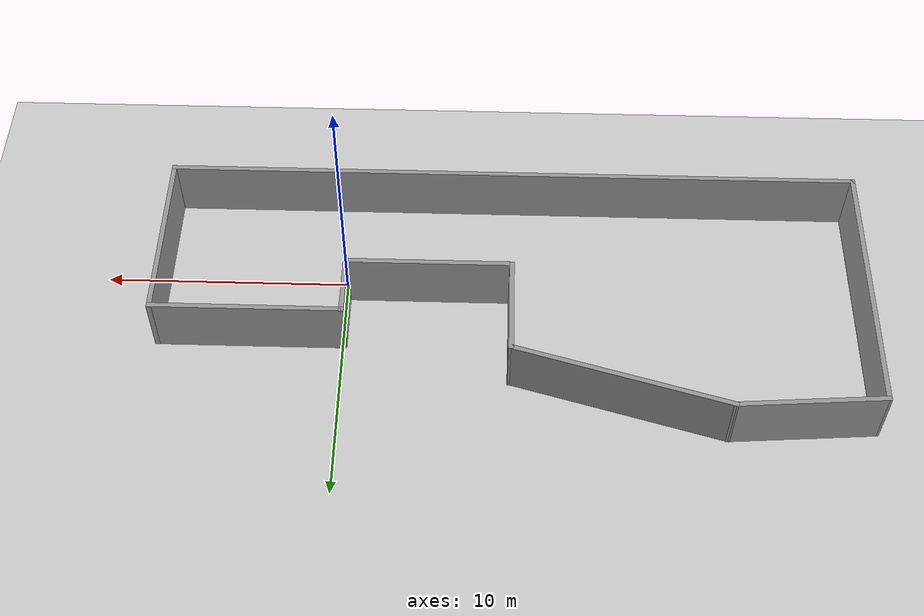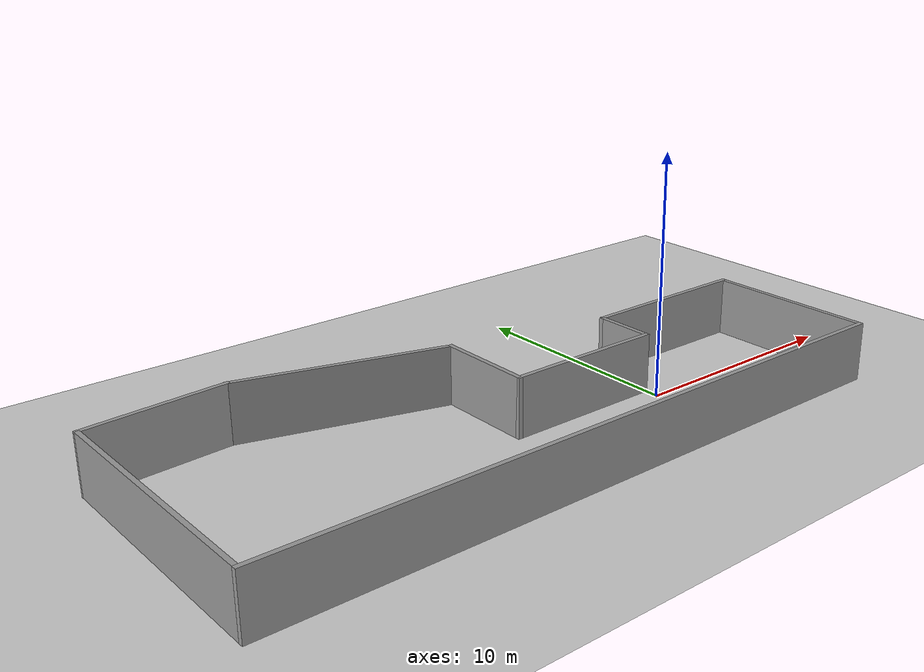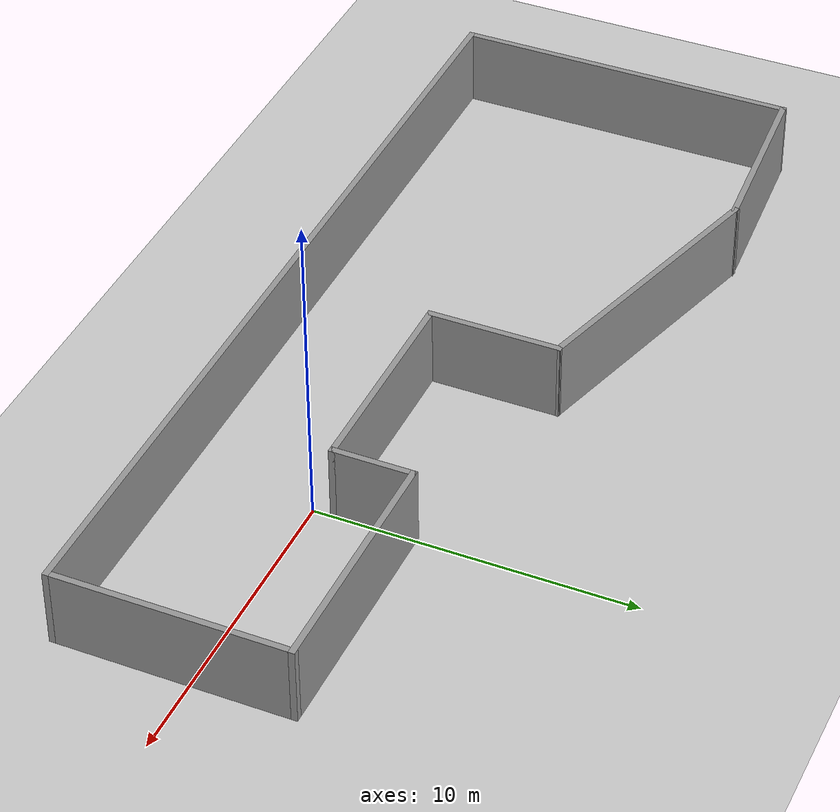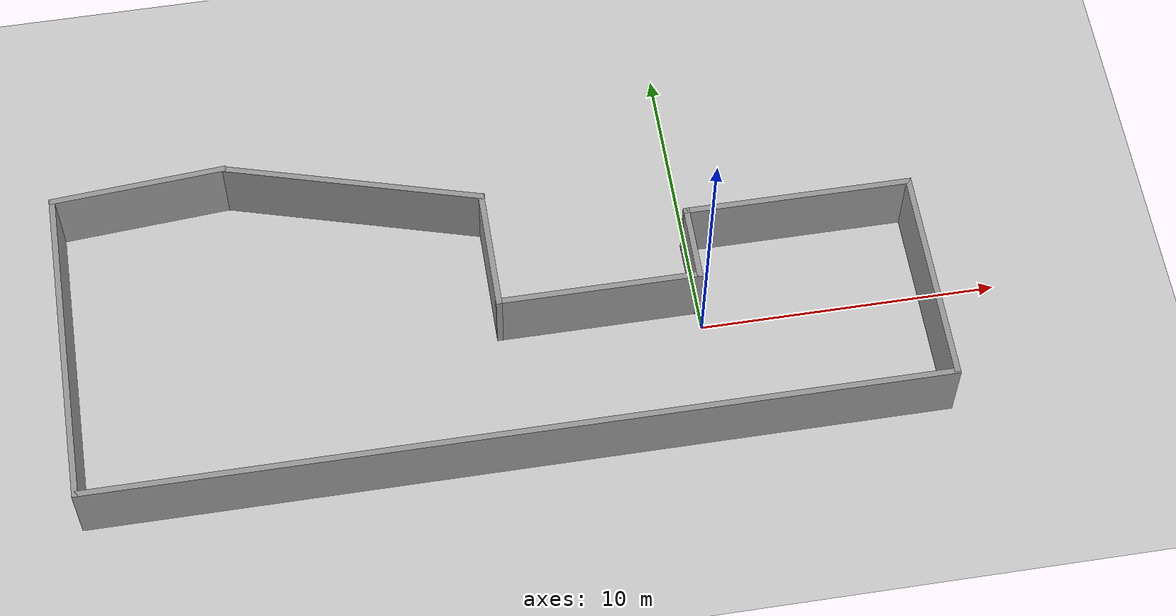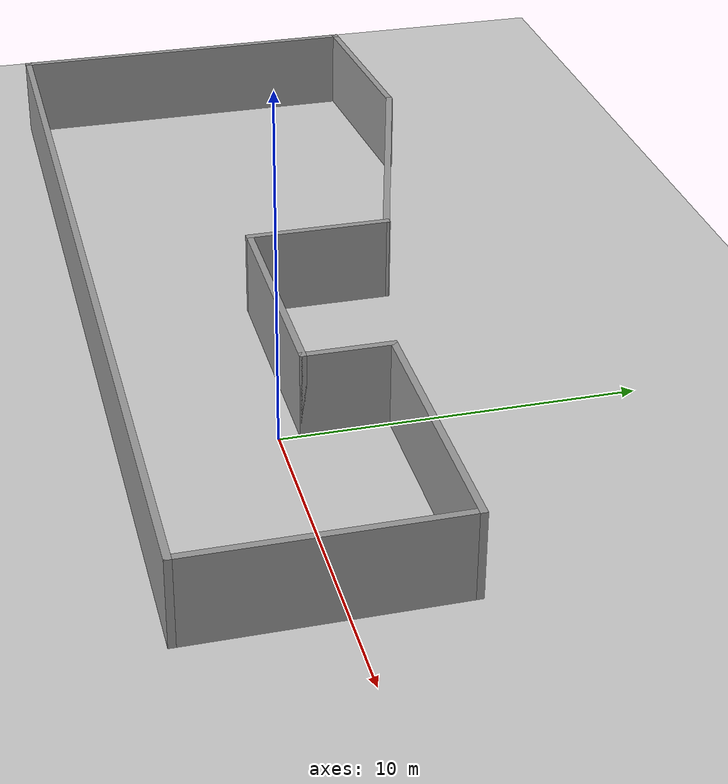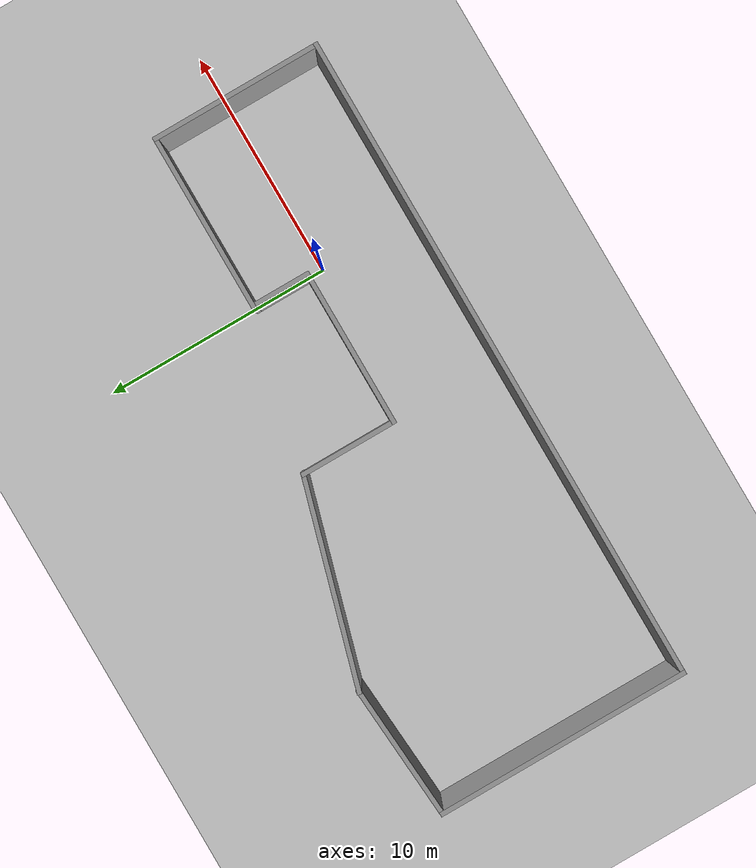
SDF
<sdf version="1.4">
 <world name="default">
  <light name="sun" type="directional">
   <pose>0 0 10 0 -0 0</pose>
   <diffuse>0.8 0.8 0.8 1</diffuse>
   <specular>0.2 0.2 0.2 1</specular>
   <attenuation>
    <range>1000</range>
    <constant>0.9</constant>
    <linear>0.01</linear>
    <quadratic>0.001</quadratic>
   </attenuation>
   <direction>-0.5 0.1 -0.9</direction>
  </light>
  <model name="ground_plane">
   <static>1</static>
   <link name="link">
    <collision name="collision">
     <geometry><plane><normal>0 0 1</normal><size>100 100</size></plane></geometry>
     <surface><friction><ode><mu>100</mu><mu2>50</mu2></ode></friction></surface>
    </collision>
    <visual name="visual">
     <cast_shadows>0</cast_shadows>
     <geometry><plane><normal>0 0 1</normal><size>100 100</size></plane></geometry>
     <material>
      <script><uri>file://media/materials/scripts/gazebo.material</uri><name>Gazebo/Grey</name></script>
     </material>
    </visual>
    <velocity_decay><linear>0</linear><angular>0</angular></velocity_decay>
   </link>
  </model>
  <physics type="ode">
   <max_step_size>0.001</max_step_size>
   <real_time_factor>1</real_time_factor>
   <real_time_update_rate>1000</real_time_update_rate>
   <gravity>0 0 -9.8</gravity>
  </physics>
  <scene><ambient>0.4 0.4 0.4 1</ambient><background>0.7 0.7 0.7 1</background><shadows>1</shadows></scene>
  <spherical_coordinates>
   <surface_model>EARTH_WGS84</surface_model>
   <latitude_deg>0</latitude_deg>
   <longitude_deg>0</longitude_deg>
   <elevation>0</elevation>
   <heading_deg>0</heading_deg>
  </spherical_coordinates>
  <model name="bigplace">
   <link name="Wall_1">
    <collision name="Wall_1_Collision">
     <geometry><box><size>11.1331 0.2 2.5</size></box></geometry>
     <pose>0 0 1.25 0 -0 0</pose>
    </collision>
    <visual name="Wall_1_Visual">
     <pose>0 0 1.25 0 -0 0</pose>
     <geometry><box><size>11.1331 0.2 2.5</size></box></geometry>
     <material>
      <script><uri>file://media/materials/scripts/gazebo.material</uri><name>Gazebo/Grey</name></script>
     </material>
    </visual>
    <velocity_decay><linear>0</linear><angular>0</angular></velocity_decay>
    <pose>-18.0024 2.29434 0 0 0 -1.5708</pose>
   </link>
   <link name="Wall_2">
    <collision name="Wall_2_Collision">
     <geometry><box><size>28.7192 0.2 2.5</size></box></geometry>
     <pose>0 0 1.25 0 -0 0</pose>
    </collision>
    <visual name="Wall_2_Visual">
     <pose>0 0 1.25 0 -0 0</pose>
     <geometry><box><size>28.7192 0.2 2.5</size></box></geometry>
     <material>
      <script><uri>file://media/materials/scripts/gazebo.material</uri><name>Gazebo/Grey</name></script>
     </material>
    </visual>
    <velocity_decay><linear>0</linear><angular>0</angular></velocity_decay>
    <pose>-3.74285 -3.17222 0 0 -0 0</pose>
   </link>
   <link name="Wall_3">
    <collision name="Wall_3_Collision">
     <geometry><box><size>7.50425 0.2 2.5</size></box></geometry>
     <pose>0 0 1.25 0 -0 0</pose>
    </collision>
    <visual name="Wall_3_Visual">
     <pose>0 0 1.25 0 -0 0</pose>
     <geometry><box><size>7.50425 0.2 2.5</size></box></geometry>
     <material>
      <script><uri>file://media/materials/scripts/gazebo.material</uri><name>Gazebo/Grey</name></script>
     </material>
    </visual>
    <velocity_decay><linear>0</linear><angular>0</angular></velocity_decay>
    <pose>10.5167 0.47991 0 0 -0 1.5708</pose>
   </link>
   <link name="Wall_4">
    <collision name="Wall_4_Collision">
     <geometry><box><size>7.7834 0.2 2.5</size></box></geometry>
     <pose>0 0 1.25 0 -0 0</pose>
    </collision>
    <visual name="Wall_4_Visual">
     <pose>0 0 1.25 0 -0 0</pose>
     <geometry><box><size>7.7834 0.2 2.5</size></box></geometry>
     <material>
      <script><uri>file://media/materials/scripts/gazebo.material</uri><name>Gazebo/Grey</name></script>
     </material>
    </visual>
    <velocity_decay><linear>0</linear><angular>0</angular></velocity_decay>
    <pose>6.72503 4.13204 0 0 -0 3.14159</pose>
   </link>
   <link name="Wall_5">
    <collision name="Wall_5_Collision">
     <geometry><box><size>2.66577 0.2 2.5</size></box></geometry>
     <pose>0 0 1.25 0 -0 0</pose>
    </collision>
    <visual name="Wall_5_Visual">
     <pose>0 0 1.25 0 -0 0</pose>
     <geometry><box><size>2.66577 0.2 2.5</size></box></geometry>
     <material>
      <script><uri>file://media/materials/scripts/gazebo.material</uri><name>Gazebo/Grey</name></script>
     </material>
    </visual>
    <velocity_decay><linear>0</linear><angular>0</angular></velocity_decay>
    <pose>2.93333 2.89915 0 0 0 -1.5708</pose>
   </link>
   <link name="Wall_6">
    <collision name="Wall_6_Collision">
     <geometry><box><size>6.89944 0.2 2.5</size></box></geometry>
     <pose>0 0 1.25 0 -0 0</pose>
    </collision>
    <visual name="Wall_6_Visual">
     <pose>0 0 1.25 0 -0 0</pose>
     <geometry><box><size>6.89944 0.2 2.5</size></box></geometry>
     <material>
      <script><uri>file://media/materials/scripts/gazebo.material</uri><name>Gazebo/Grey</name></script>
     </material>
    </visual>
    <velocity_decay><linear>0</linear><angular>0</angular></velocity_decay>
    <pose>-0.416394 1.66627 0 0 -0 3.14159</pose>
   </link>
   <link name="Wall_7">
    <collision name="Wall_7_Collision">
     <geometry><box><size>4.2941 0.2 2.5</size></box></geometry>
     <pose>0 0 1.25 0 -0 0</pose>
    </collision>
    <visual name="Wall_7_Visual">
     <pose>0 0 1.25 0 -0 0</pose>
     <geometry><box><size>4.2941 0.2 2.5</size></box></geometry>
     <material>
      <script><uri>file://media/materials/scripts/gazebo.material</uri><name>Gazebo/Grey</name></script>
     </material>
    </visual>
    <velocity_decay><linear>0</linear><angular>0</angular></velocity_decay>
    <pose>-3.76612 3.71332 0 0 -0 1.5708</pose>
   </link>
   <link name="Wall_8">
    <collision name="Wall_8_Collision">
     <geometry><box><size>9.00618 0.2 2.5</size></box></geometry>
     <pose>0 0 1.25 0 -0 0</pose>
    </collision>
    <visual name="Wall_8_Visual">
     <pose>0 0 1.25 0 -0 0</pose>
     <geometry><box><size>9.00618 0.2 2.5</size></box></geometry>
     <material>
      <script><uri>file://media/materials/scripts/gazebo.material</uri><name>Gazebo/Grey</name></script>
     </material>
    </visual>
    <velocity_decay><linear>0</linear><angular>0</angular></velocity_decay>
    <pose>-7.99979 6.97 0 0 -0 2.86329</pose>
   </link>
   <link name="Wall_9">
    <collision name="Wall_9_Collision">
     <geometry><box><size>5.98414 0.2 2.5</size></box></geometry>
     <pose>0 0 1.25 0 -0 0</pose>
    </collision>
    <visual name="Wall_9_Visual">
     <pose>0 0 1.25 0 -0 0</pose>
     <geometry><box><size>5.98414 0.2 2.5</size></box></geometry>
     <material>
      <script><uri>file://media/materials/scripts/gazebo.material</uri><name>Gazebo/Grey</name></script>
     </material>
    </visual>
    <velocity_decay><linear>0</linear><angular>0</angular></velocity_decay>
    <pose>-15.118 7.97026 0 0 0 -3.06914</pose>
   </link>
   <static>1</static>
   <pose>-3 -1 0 0 -0 0</pose>
  </model>
 </world>
</sdf>
